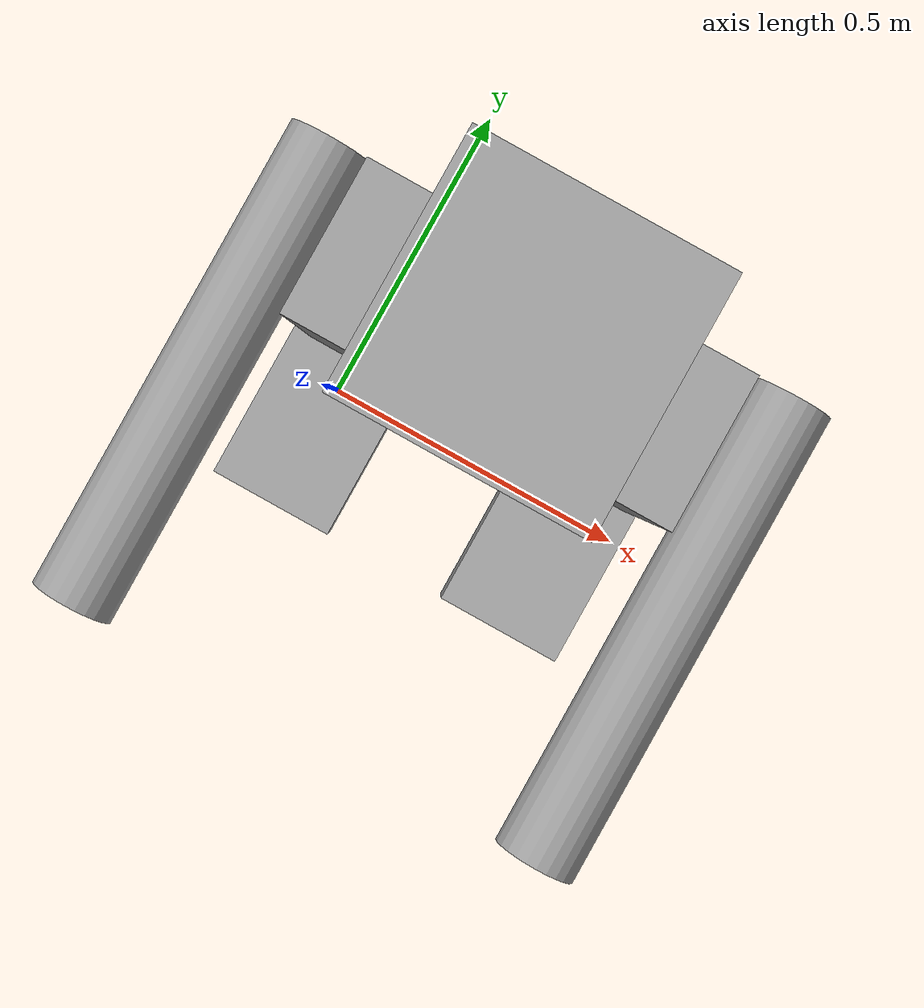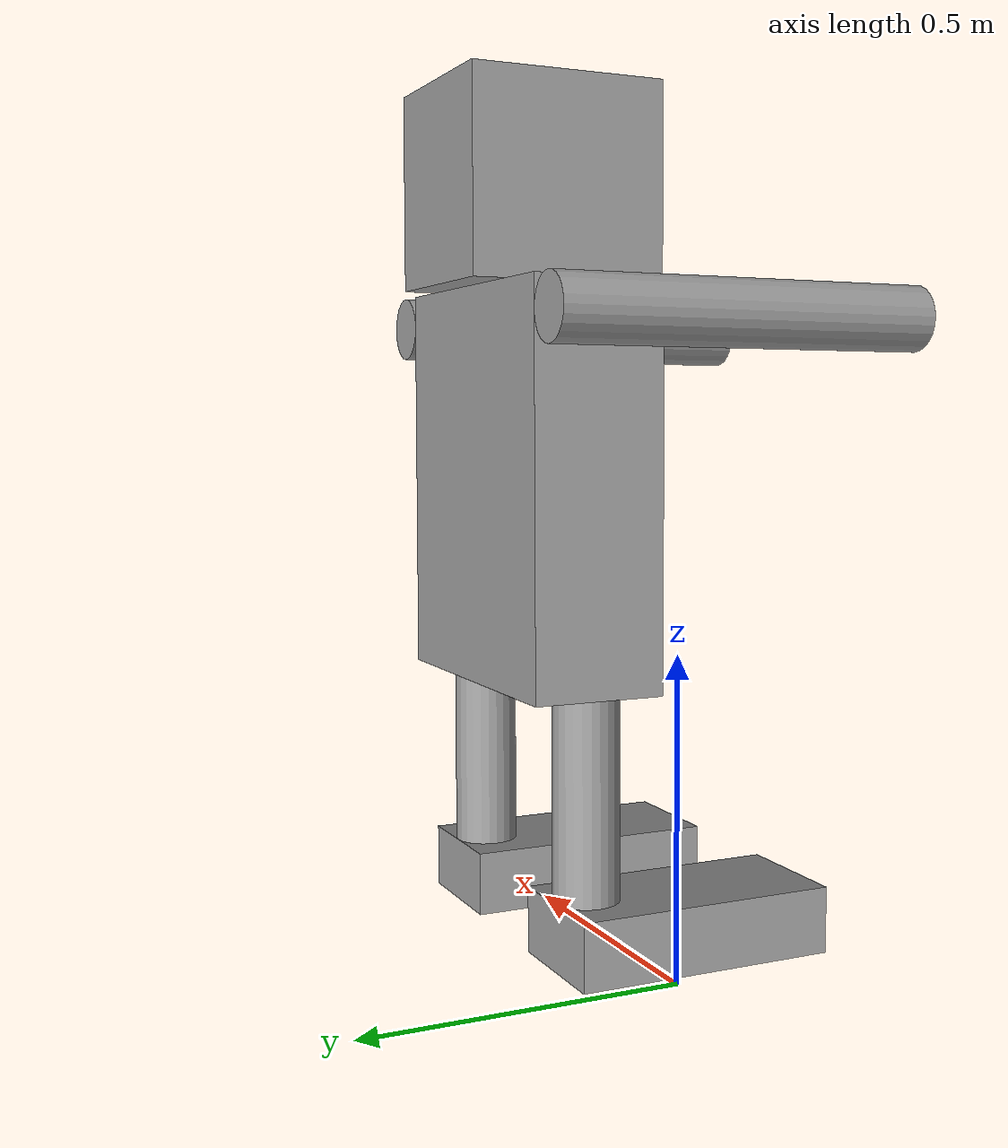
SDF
<?xml version='1.0'?>
<sdf version='1.6'>
  <model name='Robot'>
    <link name='link_0_clone'>
      <pose frame=''>0.4 0.150001 0.299999 -2e-05 0 0</pose>
      <inertial>
        <mass>1</mass>
        <inertia>
          <ixx>0.145833</ixx>
          <ixy>0</ixy>
          <ixz>0</ixz>
          <iyy>0.145833</iyy>
          <iyz>0</iyz>
          <izz>0.125</izz>
        </inertia>
        <pose frame=''>0 0 0 0 -0 0</pose>
      </inertial>
      <self_collide>0</self_collide>
      <kinematic>0</kinematic>
      <visual name='visual'>
        <pose frame=''>0 0 0 0 -0 0</pose>
        <geometry>
          <cylinder>
            <radius>0.05</radius>
            <length>0.3</length>
          </cylinder>
        </geometry>
        <material>
          <lighting>1</lighting>
          <script>
            <uri>file://media/materials/scripts/gazebo.material</uri>
            <name>Gazebo/Grey</name>
          </script>
          <shader type='pixel'>
            <normal_map>__default__</normal_map>
          </shader>
          <ambient>0.3 0.3 0.3 1</ambient>
          <diffuse>0.7 0.7 0.7 1</diffuse>
          <specular>0.01 0.01 0.01 1</specular>
          <emissive>0 0 0 1</emissive>
        </material>
        <transparency>0</transparency>
        <cast_shadows>1</cast_shadows>
      </visual>
      <collision name='collision'>
        <laser_retro>0</laser_retro>
        <max_contacts>10</max_contacts>
        <pose frame=''>0 0 0 0 -0 0</pose>
        <geometry>
          <cylinder>
            <radius>0.05</radius>
            <length>0.3</length>
          </cylinder>
        </geometry>
        <surface>
          <friction>
            <ode>
              <mu>1</mu>
              <mu2>1</mu2>
              <fdir1>0 0 0</fdir1>
              <slip1>0</slip1>
              <slip2>0</slip2>
            </ode>
            <torsional>
              <coefficient>1</coefficient>
              <patch_radius>0</patch_radius>
              <surface_radius>0</surface_radius>
              <use_patch_radius>1</use_patch_radius>
              <ode>
                <slip>0</slip>
              </ode>
            </torsional>
          </friction>
          <bounce>
            <restitution_coefficient>0</restitution_coefficient>
            <threshold>1e+06</threshold>
          </bounce>
          <contact>
            <collide_without_contact>0</collide_without_contact>
            <collide_without_contact_bitmask>1</collide_without_contact_bitmask>
            <collide_bitmask>1</collide_bitmask>
            <ode>
              <soft_cfm>0</soft_cfm>
              <soft_erp>0.2</soft_erp>
              <kp>1e+13</kp>
              <kd>1</kd>
              <max_vel>0.01</max_vel>
              <min_depth>0</min_depth>
            </ode>
            <bullet>
              <split_impulse>1</split_impulse>
              <split_impulse_penetration_threshold>-0.01</split_impulse_penetration_threshold>
              <soft_cfm>0</soft_cfm>
              <soft_erp>0.2</soft_erp>
              <kp>1e+13</kp>
              <kd>1</kd>
            </bullet>
          </contact>
        </surface>
      </collision>
    </link>
    <link name='link_0_clone_clone'>
      <pose frame=''>0 0.149999 0.3 -3e-05 -0 -0</pose>
      <inertial>
        <mass>1</mass>
        <inertia>
          <ixx>0.145833</ixx>
          <ixy>0</ixy>
          <ixz>0</ixz>
          <iyy>0.145833</iyy>
          <iyz>0</iyz>
          <izz>0.125</izz>
        </inertia>
        <pose frame=''>0 0 0 0 -0 0</pose>
      </inertial>
      <self_collide>0</self_collide>
      <kinematic>0</kinematic>
      <visual name='visual'>
        <pose frame=''>0 0 0 0 -0 0</pose>
        <geometry>
          <cylinder>
            <radius>0.05</radius>
            <length>0.3</length>
          </cylinder>
        </geometry>
        <material>
          <lighting>1</lighting>
          <script>
            <uri>file://media/materials/scripts/gazebo.material</uri>
            <name>Gazebo/Grey</name>
          </script>
          <shader type='pixel'>
            <normal_map>__default__</normal_map>
          </shader>
          <ambient>0.3 0.3 0.3 1</ambient>
          <diffuse>0.7 0.7 0.7 1</diffuse>
          <specular>0.01 0.01 0.01 1</specular>
          <emissive>0 0 0 1</emissive>
        </material>
        <transparency>0</transparency>
        <cast_shadows>1</cast_shadows>
      </visual>
      <collision name='collision'>
        <laser_retro>0</laser_retro>
        <max_contacts>10</max_contacts>
        <pose frame=''>0 0 0 0 -0 0</pose>
        <geometry>
          <cylinder>
            <radius>0.05</radius>
            <length>0.3</length>
          </cylinder>
        </geometry>
        <surface>
          <friction>
            <ode>
              <mu>1</mu>
              <mu2>1</mu2>
              <fdir1>0 0 0</fdir1>
              <slip1>0</slip1>
              <slip2>0</slip2>
            </ode>
            <torsional>
              <coefficient>1</coefficient>
              <patch_radius>0</patch_radius>
              <surface_radius>0</surface_radius>
              <use_patch_radius>1</use_patch_radius>
              <ode>
                <slip>0</slip>
              </ode>
            </torsional>
          </friction>
          <bounce>
            <restitution_coefficient>0</restitution_coefficient>
            <threshold>1e+06</threshold>
          </bounce>
          <contact>
            <collide_without_contact>0</collide_without_contact>
            <collide_without_contact_bitmask>1</collide_without_contact_bitmask>
            <collide_bitmask>1</collide_bitmask>
            <ode>
              <soft_cfm>0</soft_cfm>
              <soft_erp>0.2</soft_erp>
              <kp>1e+13</kp>
              <kd>1</kd>
              <max_vel>0.01</max_vel>
              <min_depth>0</min_depth>
            </ode>
            <bullet>
              <split_impulse>1</split_impulse>
              <split_impulse_penetration_threshold>-0.01</split_impulse_penetration_threshold>
              <soft_cfm>0</soft_cfm>
              <soft_erp>0.2</soft_erp>
              <kp>1e+13</kp>
              <kd>1</kd>
            </bullet>
          </contact>
        </surface>
      </collision>
    </link>
    <link name='link_0_clone_clone_0'>
      <pose frame=''>-0.1 -0.049994 0.999978 1.5707 -0 0</pose>
      <inertial>
        <mass>1</mass>
        <inertia>
          <ixx>0.145833</ixx>
          <ixy>0</ixy>
          <ixz>0</ixz>
          <iyy>0.145833</iyy>
          <iyz>0</iyz>
          <izz>0.125</izz>
        </inertia>
        <pose frame=''>0 0 0 0 -0 0</pose>
      </inertial>
      <self_collide>0</self_collide>
      <kinematic>0</kinematic>
      <visual name='visual'>
        <pose frame=''>0 0 0 0 -0 0</pose>
        <geometry>
          <cylinder>
            <radius>0.05</radius>
            <length>0.6</length>
          </cylinder>
        </geometry>
        <material>
          <lighting>1</lighting>
          <script>
            <uri>file://media/materials/scripts/gazebo.material</uri>
            <name>Gazebo/Grey</name>
          </script>
          <shader type='pixel'>
            <normal_map>__default__</normal_map>
          </shader>
          <ambient>0.3 0.3 0.3 1</ambient>
          <diffuse>0.7 0.7 0.7 1</diffuse>
          <specular>0.01 0.01 0.01 1</specular>
          <emissive>0 0 0 1</emissive>
        </material>
        <transparency>0</transparency>
        <cast_shadows>1</cast_shadows>
      </visual>
      <collision name='collision'>
        <laser_retro>0</laser_retro>
        <max_contacts>10</max_contacts>
        <pose frame=''>0 0 0 0 -0 0</pose>
        <geometry>
          <cylinder>
            <radius>0.05</radius>
            <length>0.6</length>
          </cylinder>
        </geometry>
        <surface>
          <friction>
            <ode>
              <mu>1</mu>
              <mu2>1</mu2>
              <fdir1>0 0 0</fdir1>
              <slip1>0</slip1>
              <slip2>0</slip2>
            </ode>
            <torsional>
              <coefficient>1</coefficient>
              <patch_radius>0</patch_radius>
              <surface_radius>0</surface_radius>
              <use_patch_radius>1</use_patch_radius>
              <ode>
                <slip>0</slip>
              </ode>
            </torsional>
          </friction>
          <bounce>
            <restitution_coefficient>0</restitution_coefficient>
            <threshold>1e+06</threshold>
          </bounce>
          <contact>
            <collide_without_contact>0</collide_without_contact>
            <collide_without_contact_bitmask>1</collide_without_contact_bitmask>
            <collide_bitmask>1</collide_bitmask>
            <ode>
              <soft_cfm>0</soft_cfm>
              <soft_erp>0.2</soft_erp>
              <kp>1e+13</kp>
              <kd>1</kd>
              <max_vel>0.01</max_vel>
              <min_depth>0</min_depth>
            </ode>
            <bullet>
              <split_impulse>1</split_impulse>
              <split_impulse_penetration_threshold>-0.01</split_impulse_penetration_threshold>
              <soft_cfm>0</soft_cfm>
              <soft_erp>0.2</soft_erp>
              <kp>1e+13</kp>
              <kd>1</kd>
            </bullet>
          </contact>
        </surface>
      </collision>
    </link>
    <link name='link_0_clone_clone_0_clone'>
      <pose frame=''>0.5 -0.049994 0.999978 1.5707 -0 0</pose>
      <inertial>
        <mass>1</mass>
        <inertia>
          <ixx>0.145833</ixx>
          <ixy>0</ixy>
          <ixz>0</ixz>
          <iyy>0.145833</iyy>
          <iyz>0</iyz>
          <izz>0.125</izz>
        </inertia>
        <pose frame=''>0 0 0 0 -0 0</pose>
      </inertial>
      <self_collide>0</self_collide>
      <kinematic>0</kinematic>
      <visual name='visual'>
        <pose frame=''>0 0 0 0 -0 0</pose>
        <geometry>
          <cylinder>
            <radius>0.05</radius>
            <length>0.6</length>
          </cylinder>
        </geometry>
        <material>
          <lighting>1</lighting>
          <script>
            <uri>file://media/materials/scripts/gazebo.material</uri>
            <name>Gazebo/Grey</name>
          </script>
          <shader type='pixel'>
            <normal_map>__default__</normal_map>
          </shader>
          <ambient>0.3 0.3 0.3 1</ambient>
          <diffuse>0.7 0.7 0.7 1</diffuse>
          <specular>0.01 0.01 0.01 1</specular>
          <emissive>0 0 0 1</emissive>
        </material>
        <transparency>0</transparency>
        <cast_shadows>1</cast_shadows>
      </visual>
      <collision name='collision'>
        <laser_retro>0</laser_retro>
        <max_contacts>10</max_contacts>
        <pose frame=''>0 0 0 0 -0 0</pose>
        <geometry>
          <cylinder>
            <radius>0.05</radius>
            <length>0.6</length>
          </cylinder>
        </geometry>
        <surface>
          <friction>
            <ode>
              <mu>1</mu>
              <mu2>1</mu2>
              <fdir1>0 0 0</fdir1>
              <slip1>0</slip1>
              <slip2>0</slip2>
            </ode>
            <torsional>
              <coefficient>1</coefficient>
              <patch_radius>0</patch_radius>
              <surface_radius>0</surface_radius>
              <use_patch_radius>1</use_patch_radius>
              <ode>
                <slip>0</slip>
              </ode>
            </torsional>
          </friction>
          <bounce>
            <restitution_coefficient>0</restitution_coefficient>
            <threshold>1e+06</threshold>
          </bounce>
          <contact>
            <collide_without_contact>0</collide_without_contact>
            <collide_without_contact_bitmask>1</collide_without_contact_bitmask>
            <collide_bitmask>1</collide_bitmask>
            <ode>
              <soft_cfm>0</soft_cfm>
              <soft_erp>0.2</soft_erp>
              <kp>1e+13</kp>
              <kd>1</kd>
              <max_vel>0.01</max_vel>
              <min_depth>0</min_depth>
            </ode>
            <bullet>
              <split_impulse>1</split_impulse>
              <split_impulse_penetration_threshold>-0.01</split_impulse_penetration_threshold>
              <soft_cfm>0</soft_cfm>
              <soft_erp>0.2</soft_erp>
              <kp>1e+13</kp>
              <kd>1</kd>
            </bullet>
          </contact>
        </surface>
      </collision>
    </link>
    <link name='link_clone'>
      <pose frame=''>-0 -0 0.1 -1e-05 -0 0</pose>
      <inertial>
        <mass>1</mass>
        <inertia>
          <ixx>0.166667</ixx>
          <ixy>0</ixy>
          <ixz>0</ixz>
          <iyy>0.166667</iyy>
          <iyz>0</iyz>
          <izz>0.166667</izz>
        </inertia>
        <pose frame=''>0 0 0 0 -0 0</pose>
      </inertial>
      <self_collide>0</self_collide>
      <kinematic>0</kinematic>
      <visual name='visual'>
        <geometry>
          <box>
            <size>0.2 0.4 0.1</size>
          </box>
        </geometry>
        <material>
          <script>
            <name>Gazebo/Grey</name>
            <uri>file://media/materials/scripts/gazebo.material</uri>
          </script>
          <shader type='pixel'>
            <normal_map>__default__</normal_map>
          </shader>
          <ambient>0.3 0.3 0.3 1</ambient>
          <diffuse>0.7 0.7 0.7 1</diffuse>
          <specular>0.01 0.01 0.01 1</specular>
          <emissive>0 0 0 1</emissive>
        </material>
        <pose frame=''>0 0 0 0 -0 0</pose>
        <transparency>0</transparency>
        <cast_shadows>1</cast_shadows>
      </visual>
      <collision name='collision'>
        <laser_retro>0</laser_retro>
        <max_contacts>10</max_contacts>
        <pose frame=''>0 0 0 0 -0 0</pose>
        <geometry>
          <box>
            <size>0.2 0.4 0.1</size>
          </box>
        </geometry>
        <surface>
          <friction>
            <ode>
              <mu>1</mu>
              <mu2>1</mu2>
              <fdir1>0 0 0</fdir1>
              <slip1>0</slip1>
              <slip2>0</slip2>
            </ode>
            <torsional>
              <coefficient>1</coefficient>
              <patch_radius>0</patch_radius>
              <surface_radius>0</surface_radius>
              <use_patch_radius>1</use_patch_radius>
              <ode>
                <slip>0</slip>
              </ode>
            </torsional>
          </friction>
          <bounce>
            <restitution_coefficient>0</restitution_coefficient>
            <threshold>1e+06</threshold>
          </bounce>
          <contact>
            <collide_without_contact>0</collide_without_contact>
            <collide_without_contact_bitmask>1</collide_without_contact_bitmask>
            <collide_bitmask>1</collide_bitmask>
            <ode>
              <soft_cfm>0</soft_cfm>
              <soft_erp>0.2</soft_erp>
              <kp>1e+13</kp>
              <kd>1</kd>
              <max_vel>0.01</max_vel>
              <min_depth>0</min_depth>
            </ode>
            <bullet>
              <split_impulse>1</split_impulse>
              <split_impulse_penetration_threshold>-0.01</split_impulse_penetration_threshold>
              <soft_cfm>0</soft_cfm>
              <soft_erp>0.2</soft_erp>
              <kp>1e+13</kp>
              <kd>1</kd>
            </bullet>
          </contact>
        </surface>
      </collision>
    </link>
    <link name='link_clone_0'>
      <pose frame=''>0.4 -0 0.1 -1e-05 -0 0</pose>
      <inertial>
        <mass>1</mass>
        <inertia>
          <ixx>0.166667</ixx>
          <ixy>0</ixy>
          <ixz>0</ixz>
          <iyy>0.166667</iyy>
          <iyz>0</iyz>
          <izz>0.166667</izz>
        </inertia>
        <pose frame=''>0 0 0 0 -0 0</pose>
      </inertial>
      <self_collide>0</self_collide>
      <kinematic>0</kinematic>
      <visual name='visual'>
        <geometry>
          <box>
            <size>0.2 0.4 0.1</size>
          </box>
        </geometry>
        <material>
          <script>
            <name>Gazebo/Grey</name>
            <uri>file://media/materials/scripts/gazebo.material</uri>
          </script>
          <shader type='pixel'>
            <normal_map>__default__</normal_map>
          </shader>
          <ambient>0.3 0.3 0.3 1</ambient>
          <diffuse>0.7 0.7 0.7 1</diffuse>
          <specular>0.01 0.01 0.01 1</specular>
          <emissive>0 0 0 1</emissive>
        </material>
        <pose frame=''>0 0 0 0 -0 0</pose>
        <transparency>0</transparency>
        <cast_shadows>1</cast_shadows>
      </visual>
      <collision name='collision'>
        <laser_retro>0</laser_retro>
        <max_contacts>10</max_contacts>
        <pose frame=''>0 0 0 0 -0 0</pose>
        <geometry>
          <box>
            <size>0.2 0.4 0.1</size>
          </box>
        </geometry>
        <surface>
          <friction>
            <ode>
              <mu>1</mu>
              <mu2>1</mu2>
              <fdir1>0 0 0</fdir1>
              <slip1>0</slip1>
              <slip2>0</slip2>
            </ode>
            <torsional>
              <coefficient>1</coefficient>
              <patch_radius>0</patch_radius>
              <surface_radius>0</surface_radius>
              <use_patch_radius>1</use_patch_radius>
              <ode>
                <slip>0</slip>
              </ode>
            </torsional>
          </friction>
          <bounce>
            <restitution_coefficient>0</restitution_coefficient>
            <threshold>1e+06</threshold>
          </bounce>
          <contact>
            <collide_without_contact>0</collide_without_contact>
            <collide_without_contact_bitmask>1</collide_without_contact_bitmask>
            <collide_bitmask>1</collide_bitmask>
            <ode>
              <soft_cfm>0</soft_cfm>
              <soft_erp>0.2</soft_erp>
              <kp>1e+13</kp>
              <kd>1</kd>
              <max_vel>0.01</max_vel>
              <min_depth>0</min_depth>
            </ode>
            <bullet>
              <split_impulse>1</split_impulse>
              <split_impulse_penetration_threshold>-0.01</split_impulse_penetration_threshold>
              <soft_cfm>0</soft_cfm>
              <soft_erp>0.2</soft_erp>
              <kp>1e+13</kp>
              <kd>1</kd>
            </bullet>
          </contact>
        </surface>
      </collision>
    </link>
    <link name='link_clone_0_clone'>
      <pose frame=''>0.2 0.150005 0.750001 -2e-05 0 0</pose>
      <inertial>
        <mass>1</mass>
        <inertia>
          <ixx>0.166667</ixx>
          <ixy>0</ixy>
          <ixz>0</ixz>
          <iyy>0.166667</iyy>
          <iyz>0</iyz>
          <izz>0.166667</izz>
        </inertia>
        <pose frame=''>0 0 0 0 -0 0</pose>
      </inertial>
      <self_collide>0</self_collide>
      <kinematic>0</kinematic>
      <visual name='visual'>
        <geometry>
          <box>
            <size>0.5 0.2 0.6</size>
          </box>
        </geometry>
        <material>
          <script>
            <name>Gazebo/Grey</name>
            <uri>file://media/materials/scripts/gazebo.material</uri>
          </script>
          <shader type='pixel'>
            <normal_map>__default__</normal_map>
          </shader>
          <ambient>0.3 0.3 0.3 1</ambient>
          <diffuse>0.7 0.7 0.7 1</diffuse>
          <specular>0.01 0.01 0.01 1</specular>
          <emissive>0 0 0 1</emissive>
        </material>
        <pose frame=''>0 0 0 0 -0 0</pose>
        <transparency>0</transparency>
        <cast_shadows>1</cast_shadows>
      </visual>
      <collision name='collision'>
        <laser_retro>0</laser_retro>
        <max_contacts>10</max_contacts>
        <pose frame=''>0 0 0 0 -0 0</pose>
        <geometry>
          <box>
            <size>0.5 0.2 0.6</size>
          </box>
        </geometry>
        <surface>
          <friction>
            <ode>
              <mu>1</mu>
              <mu2>1</mu2>
              <fdir1>0 0 0</fdir1>
              <slip1>0</slip1>
              <slip2>0</slip2>
            </ode>
            <torsional>
              <coefficient>1</coefficient>
              <patch_radius>0</patch_radius>
              <surface_radius>0</surface_radius>
              <use_patch_radius>1</use_patch_radius>
              <ode>
                <slip>0</slip>
              </ode>
            </torsional>
          </friction>
          <bounce>
            <restitution_coefficient>0</restitution_coefficient>
            <threshold>1e+06</threshold>
          </bounce>
          <contact>
            <collide_without_contact>0</collide_without_contact>
            <collide_without_contact_bitmask>1</collide_without_contact_bitmask>
            <collide_bitmask>1</collide_bitmask>
            <ode>
              <soft_cfm>0</soft_cfm>
              <soft_erp>0.2</soft_erp>
              <kp>1e+13</kp>
              <kd>1</kd>
              <max_vel>0.01</max_vel>
              <min_depth>0</min_depth>
            </ode>
            <bullet>
              <split_impulse>1</split_impulse>
              <split_impulse_penetration_threshold>-0.01</split_impulse_penetration_threshold>
              <soft_cfm>0</soft_cfm>
              <soft_erp>0.2</soft_erp>
              <kp>1e+13</kp>
              <kd>1</kd>
            </bullet>
          </contact>
        </surface>
      </collision>
    </link>
    <link name='link_clone_0_clone_clone'>
      <pose frame=''>0.2 0.150009 1.2 -3e-05 -0 -0</pose>
      <inertial>
        <mass>1</mass>
        <inertia>
          <ixx>0.166667</ixx>
          <ixy>0</ixy>
          <ixz>0</ixz>
          <iyy>0.166667</iyy>
          <iyz>0</iyz>
          <izz>0.166667</izz>
        </inertia>
        <pose frame=''>0 0 0 0 -0 0</pose>
      </inertial>
      <self_collide>0</self_collide>
      <kinematic>0</kinematic>
      <gravity>1</gravity>
      <visual name='visual'>
        <geometry>
          <box>
            <size>0.3 0.3 0.3</size>
          </box>
        </geometry>
        <material>
          <script>
            <name>Gazebo/Grey</name>
            <uri>file://media/materials/scripts/gazebo.material</uri>
          </script>
          <shader type='pixel'>
            <normal_map>__default__</normal_map>
          </shader>
          <ambient>0.3 0.3 0.3 1</ambient>
          <diffuse>0.7 0.7 0.7 1</diffuse>
          <specular>0.01 0.01 0.01 1</specular>
          <emissive>0 0 0 1</emissive>
        </material>
        <pose frame=''>0 0 0 0 -0 0</pose>
        <transparency>0</transparency>
        <cast_shadows>1</cast_shadows>
      </visual>
      <collision name='collision'>
        <laser_retro>0</laser_retro>
        <max_contacts>10</max_contacts>
        <pose frame=''>0 0 0 0 -0 0</pose>
        <geometry>
          <box>
            <size>0.3 0.3 0.3</size>
          </box>
        </geometry>
        <surface>
          <friction>
            <ode>
              <mu>1</mu>
              <mu2>1</mu2>
              <fdir1>0 0 0</fdir1>
              <slip1>0</slip1>
              <slip2>0</slip2>
            </ode>
            <torsional>
              <coefficient>1</coefficient>
              <patch_radius>0</patch_radius>
              <surface_radius>0</surface_radius>
              <use_patch_radius>1</use_patch_radius>
              <ode>
                <slip>0</slip>
              </ode>
            </torsional>
          </friction>
          <bounce>
            <restitution_coefficient>0</restitution_coefficient>
            <threshold>1e+06</threshold>
          </bounce>
          <contact>
            <collide_without_contact>0</collide_without_contact>
            <collide_without_contact_bitmask>1</collide_without_contact_bitmask>
            <collide_bitmask>1</collide_bitmask>
            <ode>
              <soft_cfm>0</soft_cfm>
              <soft_erp>0.2</soft_erp>
              <kp>1e+13</kp>
              <kd>1</kd>
              <max_vel>0.01</max_vel>
              <min_depth>0</min_depth>
            </ode>
            <bullet>
              <split_impulse>1</split_impulse>
              <split_impulse_penetration_threshold>-0.01</split_impulse_penetration_threshold>
              <soft_cfm>0</soft_cfm>
              <soft_erp>0.2</soft_erp>
              <kp>1e+13</kp>
              <kd>1</kd>
            </bullet>
          </contact>
        </surface>
      </collision>
    </link>
    <joint name='link_0_clone_JOINT_5' type='fixed'>
      <parent>link_0_clone</parent>
      <child>link_clone_0_clone</child>
      <pose frame=''>0 0 0 0 -0 0</pose>
      <physics>
        <ode>
          <limit>
            <cfm>0</cfm>
            <erp>0.2</erp>
          </limit>
          <suspension>
            <cfm>0</cfm>
            <erp>0.2</erp>
          </suspension>
        </ode>
      </physics>
    </joint>
    <joint name='link_0_clone_clone_JOINT_4' type='fixed'>
      <parent>link_0_clone_clone</parent>
      <child>link_clone_0_clone</child>
      <pose frame=''>0 0 0 0 -0 0</pose>
      <physics>
        <ode>
          <limit>
            <cfm>0</cfm>
            <erp>0.2</erp>
          </limit>
          <suspension>
            <cfm>0</cfm>
            <erp>0.2</erp>
          </suspension>
        </ode>
      </physics>
    </joint>
    <joint name='link_clone_0_JOINT_1' type='fixed'>
      <parent>link_clone_0</parent>
      <child>link_0_clone</child>
      <pose frame=''>0 0 0 0 -0 0</pose>
      <physics>
        <ode>
          <limit>
            <cfm>0</cfm>
            <erp>0.2</erp>
          </limit>
          <suspension>
            <cfm>0</cfm>
            <erp>0.2</erp>
          </suspension>
        </ode>
      </physics>
    </joint>
    <joint name='link_clone_0_clone_JOINT_6' type='fixed'>
      <parent>link_clone_0_clone</parent>
      <child>link_clone_0_clone_clone</child>
      <pose frame=''>0 0 0 0 -0 0</pose>
      <physics>
        <ode>
          <limit>
            <cfm>0</cfm>
            <erp>0.2</erp>
          </limit>
          <suspension>
            <cfm>0</cfm>
            <erp>0.2</erp>
          </suspension>
        </ode>
      </physics>
    </joint>
    <joint name='link_clone_0_clone_JOINT_8' type='fixed'>
      <parent>link_clone_0_clone</parent>
      <child>link_0_clone_clone_0_clone</child>
      <pose frame=''>0 0 0 0 -0 0</pose>
      <physics>
        <ode>
          <limit>
            <cfm>0</cfm>
            <erp>0.2</erp>
          </limit>
          <suspension>
            <cfm>0</cfm>
            <erp>0.2</erp>
          </suspension>
        </ode>
      </physics>
    </joint>
    <joint name='link_clone_0_clone_JOINT_9' type='fixed'>
      <parent>link_clone_0_clone</parent>
      <child>link_0_clone_clone_0</child>
      <pose frame=''>0 0 0 0 -0 0</pose>
      <physics>
        <ode>
          <limit>
            <cfm>0</cfm>
            <erp>0.2</erp>
          </limit>
          <suspension>
            <cfm>0</cfm>
            <erp>0.2</erp>
          </suspension>
        </ode>
      </physics>
    </joint>
    <joint name='link_clone_JOINT_0' type='fixed'>
      <parent>link_clone</parent>
      <child>link_0_clone_clone</child>
      <pose frame=''>0 0 0 0 -0 0</pose>
      <physics>
        <ode>
          <limit>
            <cfm>0</cfm>
            <erp>0.2</erp>
          </limit>
          <suspension>
            <cfm>0</cfm>
            <erp>0.2</erp>
          </suspension>
        </ode>
      </physics>
    </joint>
    <static>0</static>
    <allow_auto_disable>1</allow_auto_disable>
  </model>
</sdf>
